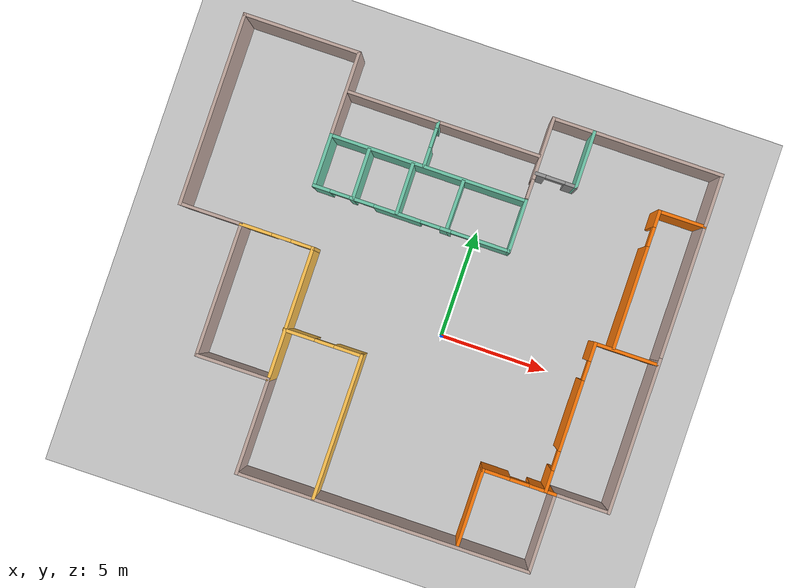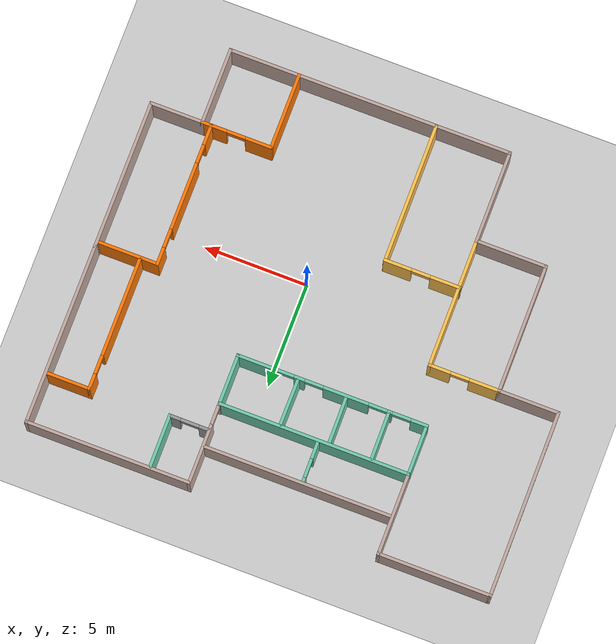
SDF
<sdf version="1.6">
 <world name="default">
  <model name="ground_plane">
   <static>1</static>
   <link name="link">
    <collision name="collision">
     <geometry><plane><normal>0 0 1</normal><size>100 100</size></plane></geometry>
     <surface>
      <contact><collide_bitmask>65535</collide_bitmask></contact>
      <friction><ode><mu>100</mu><mu2>50</mu2></ode></friction>
     </surface>
    </collision>
    <visual name="visual">
     <cast_shadows>0</cast_shadows>
     <geometry><plane><normal>0 0 1</normal><size>100 100</size></plane></geometry>
     <material>
      <script><uri>file://media/materials/scripts/gazebo.material</uri><name>Gazebo/Grey</name></script>
     </material>
    </visual>
   </link>
  </model>
  <model name="Office">
   <pose>-1.6791 1.0811 0 0 -0 0</pose>
   <link name="Wall_0">
    <collision name="Wall_0_Collision">
     <geometry><box><size>9 0.15 2.5</size></box></geometry>
     <pose>0 0 1.25 0 -0 0</pose>
    </collision>
    <visual name="Wall_0_Visual">
     <pose>0 0 1.25 0 -0 0</pose>
     <geometry><box><size>9 0.15 2.5</size></box></geometry>
     <material>
      <script><uri>file://media/materials/scripts/gazebo.material</uri><name>Gazebo/Grey</name></script>
      <ambient>0.760784 0.662745 0.627451 1</ambient>
     </material>
     <meta><layer>0</layer></meta>
    </visual>
    <pose>-11.15 5.225 0 0 -0 1.5708</pose>
   </link>
   <link name="Wall_1">
    <collision name="Wall_1_Collision">
     <geometry><box><size>5.5 0.15 2.5</size></box></geometry>
     <pose>0 0 1.25 0 -0 0</pose>
    </collision>
    <visual name="Wall_1_Visual">
     <pose>0 0 1.25 0 -0 0</pose>
     <geometry><box><size>5.5 0.15 2.5</size></box></geometry>
     <material>
      <script><uri>file://media/materials/scripts/gazebo.material</uri><name>Gazebo/Grey</name></script>
      <ambient>0.760784 0.662745 0.627451 1</ambient>
     </material>
     <meta><layer>0</layer></meta>
    </visual>
    <pose>-8.475 9.65 0 0 -0 0</pose>
   </link>
   <link name="Wall_10">
    <collision name="Wall_10_Collision">
     <geometry><box><size>3 0.15 2.5</size></box></geometry>
     <pose>0 0 1.25 0 -0 0</pose>
    </collision>
    <visual name="Wall_10_Visual">
     <pose>0 0 1.25 0 -0 0</pose>
     <geometry><box><size>3 0.15 2.5</size></box></geometry>
     <material>
      <script><uri>file://media/materials/scripts/gazebo.material</uri><name>Gazebo/Grey</name></script>
      <ambient>0.760784 0.662745 0.627451 1</ambient>
     </material>
     <meta><layer>0</layer></meta>
    </visual>
    <pose>-9.725 0.8 0 0 -0 0</pose>
   </link>
   <link name="Wall_11">
    <collision name="Wall_11_Collision">
     <geometry><box><size>6.25 0.15 2.5</size></box></geometry>
     <pose>0 0 1.25 0 -0 0</pose>
    </collision>
    <visual name="Wall_11_Visual">
     <pose>0 0 1.25 0 -0 0</pose>
     <geometry><box><size>6.25 0.15 2.5</size></box></geometry>
     <material>
      <script><uri>file://media/materials/scripts/gazebo.material</uri><name>Gazebo/Grey</name></script>
      <ambient>0.760784 0.662745 0.627451 1</ambient>
     </material>
     <meta><layer>0</layer></meta>
    </visual>
    <pose>-8.3 -2.25 0 0 -0 -1.5708</pose>
   </link>
   <link name="Wall_12">
    <collision name="Wall_12_Collision">
     <geometry><box><size>3.5 0.15 2.5</size></box></geometry>
     <pose>0 0 1.25 0 -0 0</pose>
    </collision>
    <visual name="Wall_12_Visual">
     <pose>0 0 1.25 0 -0 0</pose>
     <geometry><box><size>3.5 0.15 2.5</size></box></geometry>
     <material>
      <script><uri>file://media/materials/scripts/gazebo.material</uri><name>Gazebo/Grey</name></script>
      <ambient>0.760784 0.662745 0.627451 1</ambient>
     </material>
     <meta><layer>0</layer></meta>
    </visual>
    <pose>-6.625 -5.3 0 0 -0 0</pose>
   </link>
   <link name="Wall_13">
    <collision name="Wall_13_Collision">
     <geometry><box><size>4.5 0.15 2.5</size></box></geometry>
     <pose>0 0 1.25 0 -0 0</pose>
    </collision>
    <visual name="Wall_13_Visual">
     <pose>0 0 1.25 0 -0 0</pose>
     <geometry><box><size>4.5 0.15 2.5</size></box></geometry>
     <material>
      <script><uri>file://media/materials/scripts/gazebo.material</uri><name>Gazebo/Grey</name></script>
      <ambient>0.760784 0.662745 0.627451 1</ambient>
     </material>
     <meta><layer>0</layer></meta>
    </visual>
    <pose>-4.95 -7.475 0 0 -0 -1.5708</pose>
   </link>
   <link name="Wall_14">
    <collision name="Wall_14_Collision">
     <geometry><box><size>13.75 0.15 2.5</size></box></geometry>
     <pose>0 0 1.25 0 -0 0</pose>
    </collision>
    <visual name="Wall_14_Visual">
     <pose>0 0 1.25 0 -0 0</pose>
     <geometry><box><size>13.75 0.15 2.5</size></box></geometry>
     <material>
      <script><uri>file://media/materials/scripts/gazebo.material</uri><name>Gazebo/Grey</name></script>
      <ambient>0.760784 0.662745 0.627451 1</ambient>
     </material>
     <meta><layer>0</layer></meta>
    </visual>
    <pose>1.85 -9.65 0 0 -0 0</pose>
   </link>
   <link name="Wall_15">
    <collision name="Wall_15_Collision">
     <geometry><box><size>3.75 0.15 2.5</size></box></geometry>
     <pose>0 0 1.25 0 -0 0</pose>
    </collision>
    <visual name="Wall_15_Visual">
     <pose>0 0 1.25 0 -0 0</pose>
     <geometry><box><size>3.75 0.15 2.5</size></box></geometry>
     <material>
      <script><uri>file://media/materials/scripts/gazebo.material</uri><name>Gazebo/Grey</name></script>
      <ambient>0.760784 0.662745 0.627451 1</ambient>
     </material>
     <meta><layer>0</layer></meta>
    </visual>
    <pose>8.65 -7.85 0 0 -0 1.5708</pose>
   </link>
   <link name="Wall_19">
    <collision name="Wall_19_Collision">
     <geometry><box><size>7.25 0.15 2.5</size></box></geometry>
     <pose>0 0 1.25 0 -0 0</pose>
    </collision>
    <visual name="Wall_19_Visual">
     <pose>0 0 1.25 0 -0 0</pose>
     <geometry><box><size>7.25 0.15 2.5</size></box></geometry>
     <material>
      <script><uri>file://media/materials/scripts/gazebo.material</uri><name>Gazebo/Grey</name></script>
      <ambient>0.760784 0.662745 0.627451 1</ambient>
     </material>
     <meta><layer>0</layer></meta>
    </visual>
    <pose>11.15 -2.5 0 0 -0 -1.5708</pose>
   </link>
   <link name="Wall_2">
    <collision name="Wall_2_Collision">
     <geometry><box><size>4 0.15 2.5</size></box></geometry>
     <pose>0 0 1.25 0 -0 0</pose>
    </collision>
    <visual name="Wall_2_Visual">
     <pose>0 0 1.25 0 -0 0</pose>
     <geometry><box><size>4 0.15 2.5</size></box></geometry>
     <material>
      <script><uri>file://media/materials/scripts/gazebo.material</uri><name>Gazebo/Grey</name></script>
      <ambient>0.760784 0.662745 0.627451 1</ambient>
     </material>
     <meta><layer>0</layer></meta>
    </visual>
    <pose>-5.8 7.725 0 0 -0 -1.5708</pose>
   </link>
   <link name="Wall_20">
    <collision name="Wall_20_Collision">
     <geometry><box><size>2.65 0.15 2.5</size></box></geometry>
     <pose>0 0 1.25 0 -0 0</pose>
    </collision>
    <visual name="Wall_20_Visual">
     <pose>0 0 1.25 0 -0 0</pose>
     <geometry><box><size>2.65 0.15 2.5</size></box></geometry>
     <material>
      <script><uri>file://media/materials/scripts/gazebo.material</uri><name>Gazebo/Grey</name></script>
      <ambient>0.760784 0.662745 0.627451 1</ambient>
     </material>
     <meta><layer>0</layer></meta>
    </visual>
    <pose>9.9 -6.05 0 0 -0 3.14159</pose>
   </link>
   <link name="Wall_22">
    <pose>-6.625 0.8 0 0 -0 0</pose>
    <visual name="Wall_22_Visual_0">
     <pose>-0.996511 0 1.25 0 -0 0</pose>
     <geometry><box><size>1.50698 0.15 2.5</size></box></geometry>
     <material>
      <script><uri>file://media/materials/scripts/gazebo.material</uri><name>Gazebo/Grey</name></script>
      <ambient>1 0.764706 0.305882 1</ambient>
     </material>
     <meta><layer>0</layer></meta>
    </visual>
    <collision name="Wall_22_Collision_0">
     <geometry><box><size>1.50698 0.15 2.5</size></box></geometry>
     <pose>-0.996511 0 1.25 0 -0 0</pose>
    </collision>
    <visual name="Wall_22_Visual_1">
     <pose>1.20349 0 1.25 0 -0 0</pose>
     <geometry><box><size>1.09302 0.15 2.5</size></box></geometry>
     <material>
      <script><uri>file://media/materials/scripts/gazebo.material</uri><name>Gazebo/Grey</name></script>
      <ambient>1 0.764706 0.305882 1</ambient>
     </material>
     <meta><layer>0</layer></meta>
    </visual>
    <collision name="Wall_22_Collision_1">
     <geometry><box><size>1.09302 0.15 2.5</size></box></geometry>
     <pose>1.20349 0 1.25 0 -0 0</pose>
    </collision>
    <visual name="Wall_22_Visual_2">
     <pose>0.206978 0 2.25 0 -0 0</pose>
     <geometry><box><size>0.9 0.15 0.5</size></box></geometry>
     <material>
      <script><uri>file://media/materials/scripts/gazebo.material</uri><name>Gazebo/Grey</name></script>
      <ambient>1 0.764706 0.305882 1</ambient>
     </material>
     <meta><layer>0</layer></meta>
    </visual>
    <collision name="Wall_22_Collision_2">
     <geometry><box><size>0.9 0.15 0.5</size></box></geometry>
     <pose>0.206978 0 2.25 0 -0 0</pose>
    </collision>
   </link>
   <link name="Wall_24">
    <collision name="Wall_24_Collision">
     <geometry><box><size>6.25 0.15 2.5</size></box></geometry>
     <pose>0 0 1.25 0 -0 0</pose>
    </collision>
    <visual name="Wall_24_Visual">
     <pose>0 0 1.25 0 -0 0</pose>
     <geometry><box><size>6.25 0.15 2.5</size></box></geometry>
     <material>
      <script><uri>file://media/materials/scripts/gazebo.material</uri><name>Gazebo/Grey</name></script>
      <ambient>1 0.764706 0.305882 1</ambient>
     </material>
     <meta><layer>0</layer></meta>
    </visual>
    <pose>-4.95 -2.25 0 0 -0 1.5708</pose>
   </link>
   <link name="Wall_26">
    <pose>-3.18284 -3.00704 0 0 -0 0</pose>
    <visual name="Wall_26_Visual_0">
     <pose>-1.13202 0 1.25 0 -0 0</pose>
     <geometry><box><size>1.48596 0.15 2.5</size></box></geometry>
     <material>
      <script><uri>file://media/materials/scripts/gazebo.material</uri><name>Gazebo/Grey</name></script>
      <ambient>1 0.764706 0.305882 1</ambient>
     </material>
     <meta><layer>0</layer></meta>
    </visual>
    <collision name="Wall_26_Collision_0">
     <geometry><box><size>1.48596 0.15 2.5</size></box></geometry>
     <pose>-1.13202 0 1.25 0 -0 0</pose>
    </collision>
    <visual name="Wall_26_Visual_1">
     <pose>1.19298 0 1.25 0 -0 0</pose>
     <geometry><box><size>1.36404 0.15 2.5</size></box></geometry>
     <material>
      <script><uri>file://media/materials/scripts/gazebo.material</uri><name>Gazebo/Grey</name></script>
      <ambient>1 0.764706 0.305882 1</ambient>
     </material>
     <meta><layer>0</layer></meta>
    </visual>
    <collision name="Wall_26_Collision_1">
     <geometry><box><size>1.36404 0.15 2.5</size></box></geometry>
     <pose>1.19298 0 1.25 0 -0 0</pose>
    </collision>
    <visual name="Wall_26_Visual_2">
     <pose>0.060957 0 2.25 0 -0 0</pose>
     <geometry><box><size>0.9 0.15 0.5</size></box></geometry>
     <material>
      <script><uri>file://media/materials/scripts/gazebo.material</uri><name>Gazebo/Grey</name></script>
      <ambient>1 0.764706 0.305882 1</ambient>
     </material>
     <meta><layer>0</layer></meta>
    </visual>
    <collision name="Wall_26_Collision_2">
     <geometry><box><size>0.9 0.15 0.5</size></box></geometry>
     <pose>0.060957 0 2.25 0 -0 0</pose>
    </collision>
   </link>
   <link name="Wall_27">
    <collision name="Wall_27_Collision">
     <geometry><box><size>6.75 0.15 2.5</size></box></geometry>
     <pose>0 0 1.25 0 -0 0</pose>
    </collision>
    <visual name="Wall_27_Visual">
     <pose>0 0 1.25 0 -0 0</pose>
     <geometry><box><size>6.75 0.15 2.5</size></box></geometry>
     <material>
      <script><uri>file://media/materials/scripts/gazebo.material</uri><name>Gazebo/Grey</name></script>
      <ambient>1 0.764706 0.305882 1</ambient>
     </material>
     <meta><layer>0</layer></meta>
    </visual>
    <pose>-1.38284 -6.30704 0 0 -0 -1.5708</pose>
   </link>
   <link name="Wall_3">
    <collision name="Wall_3_Collision">
     <geometry><box><size>9.25 0.15 2.5</size></box></geometry>
     <pose>0 0 1.25 0 -0 0</pose>
    </collision>
    <visual name="Wall_3_Visual">
     <pose>0 0 1.25 0 -0 0</pose>
     <geometry><box><size>9.25 0.15 2.5</size></box></geometry>
     <material>
      <script><uri>file://media/materials/scripts/gazebo.material</uri><name>Gazebo/Grey</name></script>
      <ambient>0.435294 0.796078 0.67451 1</ambient>
     </material>
     <meta><layer>0</layer></meta>
    </visual>
    <pose>-1.25 5.8 0 0 -0 0</pose>
   </link>
   <link name="Wall_31">
    <pose>6.975 -6.05 0 0 -0 3.14159</pose>
    <visual name="Wall_31_Visual_0">
     <pose>-1.11281 0 1.25 0 -0 0</pose>
     <geometry><box><size>1.27439 0.15 2.5</size></box></geometry>
     <material>
      <script><uri>file://media/materials/scripts/gazebo.material</uri><name>Gazebo/Grey</name></script>
      <ambient>0.996078 0.47451 0.0196078 1</ambient>
     </material>
     <meta><layer>0</layer></meta>
    </visual>
    <collision name="Wall_31_Collision_0">
     <geometry><box><size>1.27439 0.15 2.5</size></box></geometry>
     <pose>-1.11281 0 1.25 0 -0 0</pose>
    </collision>
    <visual name="Wall_31_Visual_1">
     <pose>1.08719 0 1.25 0 -0 0</pose>
     <geometry><box><size>1.32561 0.15 2.5</size></box></geometry>
     <material>
      <script><uri>file://media/materials/scripts/gazebo.material</uri><name>Gazebo/Grey</name></script>
      <ambient>0.996078 0.47451 0.0196078 1</ambient>
     </material>
     <meta><layer>0</layer></meta>
    </visual>
    <collision name="Wall_31_Collision_1">
     <geometry><box><size>1.32561 0.15 2.5</size></box></geometry>
     <pose>1.08719 0 1.25 0 -0 0</pose>
    </collision>
    <visual name="Wall_31_Visual_2">
     <pose>-0.025609 0 2.25 0 -0 0</pose>
     <geometry><box><size>0.9 0.15 0.5</size></box></geometry>
     <material>
      <script><uri>file://media/materials/scripts/gazebo.material</uri><name>Gazebo/Grey</name></script>
      <ambient>0.996078 0.47451 0.0196078 1</ambient>
     </material>
     <meta><layer>0</layer></meta>
    </visual>
    <collision name="Wall_31_Collision_2">
     <geometry><box><size>0.9 0.15 0.5</size></box></geometry>
     <pose>-0.025609 0 2.25 0 -0 0</pose>
    </collision>
   </link>
   <link name="Wall_34">
    <collision name="Wall_34_Collision">
     <geometry><box><size>3.75 0.15 2.5</size></box></geometry>
     <pose>0 0 1.25 0 -0 0</pose>
    </collision>
    <visual name="Wall_34_Visual">
     <pose>0 0 1.25 0 -0 0</pose>
     <geometry><box><size>3.75 0.15 2.5</size></box></geometry>
     <material>
      <script><uri>file://media/materials/scripts/gazebo.material</uri><name>Gazebo/Grey</name></script>
      <ambient>0.996078 0.47451 0.0196078 1</ambient>
     </material>
     <meta><layer>0</layer></meta>
    </visual>
    <pose>5.3 -7.85 0 0 -0 -1.5708</pose>
   </link>
   <link name="Wall_36">
    <pose>8.21512 -2.61498 0 0 -0 1.5708</pose>
    <visual name="Wall_36_Visual_0">
     <pose>-2.98655 0 1.25 0 -0 0</pose>
     <geometry><box><size>1.02689 0.15 2.5</size></box></geometry>
     <material>
      <script><uri>file://media/materials/scripts/gazebo.material</uri><name>Gazebo/Grey</name></script>
      <ambient>0.996078 0.47451 0.0196078 1</ambient>
     </material>
     <meta><layer>0</layer></meta>
    </visual>
    <collision name="Wall_36_Collision_0">
     <geometry><box><size>1.02689 0.15 2.5</size></box></geometry>
     <pose>-2.98655 0 1.25 0 -0 0</pose>
    </collision>
    <visual name="Wall_36_Visual_1">
     <pose>0.068841 0 1.25 0 -0 0</pose>
     <geometry><box><size>3.28389 0.15 2.5</size></box></geometry>
     <material>
      <script><uri>file://media/materials/scripts/gazebo.material</uri><name>Gazebo/Grey</name></script>
      <ambient>0.996078 0.47451 0.0196078 1</ambient>
     </material>
     <meta><layer>0</layer></meta>
    </visual>
    <collision name="Wall_36_Collision_1">
     <geometry><box><size>3.28389 0.15 2.5</size></box></geometry>
     <pose>0.068841 0 1.25 0 -0 0</pose>
    </collision>
    <visual name="Wall_36_Visual_2">
     <pose>3.05539 0 1.25 0 -0 0</pose>
     <geometry><box><size>0.889212 0.15 2.5</size></box></geometry>
     <material>
      <script><uri>file://media/materials/scripts/gazebo.material</uri><name>Gazebo/Grey</name></script>
      <ambient>0.996078 0.47451 0.0196078 1</ambient>
     </material>
     <meta><layer>0</layer></meta>
    </visual>
    <collision name="Wall_36_Collision_2">
     <geometry><box><size>0.889212 0.15 2.5</size></box></geometry>
     <pose>3.05539 0 1.25 0 -0 0</pose>
    </collision>
    <visual name="Wall_36_Visual_3">
     <pose>-2.02311 0 2.25 0 -0 0</pose>
     <geometry><box><size>0.9 0.15 0.5</size></box></geometry>
     <material>
      <script><uri>file://media/materials/scripts/gazebo.material</uri><name>Gazebo/Grey</name></script>
      <ambient>0.996078 0.47451 0.0196078 1</ambient>
     </material>
     <meta><layer>0</layer></meta>
    </visual>
    <collision name="Wall_36_Collision_3">
     <geometry><box><size>0.9 0.15 0.5</size></box></geometry>
     <pose>-2.02311 0 2.25 0 -0 0</pose>
    </collision>
    <visual name="Wall_36_Visual_4">
     <pose>2.16079 0 2.25 0 -0 0</pose>
     <geometry><box><size>0.9 0.15 0.5</size></box></geometry>
     <material>
      <script><uri>file://media/materials/scripts/gazebo.material</uri><name>Gazebo/Grey</name></script>
      <ambient>0.996078 0.47451 0.0196078 1</ambient>
     </material>
     <meta><layer>0</layer></meta>
    </visual>
    <collision name="Wall_36_Collision_4">
     <geometry><box><size>0.9 0.15 0.5</size></box></geometry>
     <pose>2.16079 0 2.25 0 -0 0</pose>
    </collision>
   </link>
   <link name="Wall_39">
    <collision name="Wall_39_Collision">
     <geometry><box><size>3 0.15 2.5</size></box></geometry>
     <pose>0 0 1.25 0 -0 0</pose>
    </collision>
    <visual name="Wall_39_Visual">
     <pose>0 0 1.25 0 -0 0</pose>
     <geometry><box><size>3 0.15 2.5</size></box></geometry>
     <material>
      <script><uri>file://media/materials/scripts/gazebo.material</uri><name>Gazebo/Grey</name></script>
      <ambient>0.996078 0.47451 0.0196078 1</ambient>
     </material>
     <meta><layer>0</layer></meta>
    </visual>
    <pose>9.64012 0.810019 0 0 -0 0</pose>
   </link>
   <link name="Wall_4">
    <pose>3.3 7.725 0 0 -0 1.5708</pose>
    <visual name="Wall_4_Visual_0">
     <pose>-1.90552 0 1.25 0 -0 0</pose>
     <geometry><box><size>0.188955 0.15 2.5</size></box></geometry>
     <material>
      <script><uri>file://media/materials/scripts/gazebo.material</uri><name>Gazebo/Grey</name></script>
      <ambient>0.760784 0.662745 0.627451 1</ambient>
     </material>
     <meta><layer>0</layer></meta>
    </visual>
    <collision name="Wall_4_Collision_0">
     <geometry><box><size>0.188955 0.15 2.5</size></box></geometry>
     <pose>-1.90552 0 1.25 0 -0 0</pose>
    </collision>
    <visual name="Wall_4_Visual_1">
     <pose>0.544478 0 1.25 0 -0 0</pose>
     <geometry><box><size>2.91105 0.15 2.5</size></box></geometry>
     <material>
      <script><uri>file://media/materials/scripts/gazebo.material</uri><name>Gazebo/Grey</name></script>
      <ambient>0.760784 0.662745 0.627451 1</ambient>
     </material>
     <meta><layer>0</layer></meta>
    </visual>
    <collision name="Wall_4_Collision_1">
     <geometry><box><size>2.91105 0.15 2.5</size></box></geometry>
     <pose>0.544478 0 1.25 0 -0 0</pose>
    </collision>
    <visual name="Wall_4_Visual_2">
     <pose>-1.36105 0 2.25 0 -0 0</pose>
     <geometry><box><size>0.9 0.15 0.5</size></box></geometry>
     <material>
      <script><uri>file://media/materials/scripts/gazebo.material</uri><name>Gazebo/Grey</name></script>
      <ambient>0.760784 0.662745 0.627451 1</ambient>
     </material>
     <meta><layer>0</layer></meta>
    </visual>
    <collision name="Wall_4_Collision_2">
     <geometry><box><size>0.9 0.15 0.5</size></box></geometry>
     <pose>-1.36105 0 2.25 0 -0 0</pose>
    </collision>
   </link>
   <link name="Wall_41">
    <collision name="Wall_41_Collision">
     <geometry><box><size>9 0.15 2.5</size></box></geometry>
     <pose>0 0 1.25 0 -0 0</pose>
    </collision>
    <visual name="Wall_41_Visual">
     <pose>0 0 1.25 0 -0 0</pose>
     <geometry><box><size>9 0.15 2.5</size></box></geometry>
     <material>
      <script><uri>file://media/materials/scripts/gazebo.material</uri><name>Gazebo/Grey</name></script>
      <ambient>0.760784 0.662745 0.627451 1</ambient>
     </material>
     <meta><layer>0</layer></meta>
    </visual>
    <pose>-1.23454 7.87067 0 0 -0 0</pose>
   </link>
   <link name="Wall_43">
    <pose>-1.47642 6.84275 0 0 -0 -1.5652</pose>
    <visual name="Wall_43_Visual_0">
     <pose>-0.912677 0 1.25 0 -0 0</pose>
     <geometry><box><size>0.333512 0.15 2.5</size></box></geometry>
     <material>
      <script><uri>file://media/materials/scripts/gazebo.material</uri><name>Gazebo/Grey</name></script>
      <ambient>0.435294 0.796078 0.67451 1</ambient>
     </material>
     <meta><layer>0</layer></meta>
    </visual>
    <collision name="Wall_43_Collision_0">
     <geometry><box><size>0.333512 0.15 2.5</size></box></geometry>
     <pose>-0.912677 0 1.25 0 -0 0</pose>
    </collision>
    <visual name="Wall_43_Visual_1">
     <pose>0.616756 0 1.25 0 -0 0</pose>
     <geometry><box><size>0.925354 0.15 2.5</size></box></geometry>
     <material>
      <script><uri>file://media/materials/scripts/gazebo.material</uri><name>Gazebo/Grey</name></script>
      <ambient>0.435294 0.796078 0.67451 1</ambient>
     </material>
     <meta><layer>0</layer></meta>
    </visual>
    <collision name="Wall_43_Collision_1">
     <geometry><box><size>0.925354 0.15 2.5</size></box></geometry>
     <pose>0.616756 0 1.25 0 -0 0</pose>
    </collision>
    <visual name="Wall_43_Visual_2">
     <pose>-0.295921 0 2.25 0 -0 0</pose>
     <geometry><box><size>0.9 0.15 0.5</size></box></geometry>
     <material>
      <script><uri>file://media/materials/scripts/gazebo.material</uri><name>Gazebo/Grey</name></script>
      <ambient>0.435294 0.796078 0.67451 1</ambient>
     </material>
     <meta><layer>0</layer></meta>
    </visual>
    <collision name="Wall_43_Collision_2">
     <geometry><box><size>0.9 0.15 0.5</size></box></geometry>
     <pose>-0.295921 0 2.25 0 -0 0</pose>
    </collision>
   </link>
   <link name="Wall_49">
    <collision name="Wall_49_Collision">
     <geometry><box><size>2.5 0.15 2.5</size></box></geometry>
     <pose>0 0 1.25 0 -0 0</pose>
    </collision>
    <visual name="Wall_49_Visual">
     <pose>0 0 1.25 0 -0 0</pose>
     <geometry><box><size>2.5 0.15 2.5</size></box></geometry>
     <material>
      <script><uri>file://media/materials/scripts/gazebo.material</uri><name>Gazebo/Grey</name></script>
      <ambient>0.435294 0.796078 0.67451 1</ambient>
     </material>
     <meta><layer>0</layer></meta>
    </visual>
    <pose>-5.8 4.625 0 0 -0 -1.5708</pose>
   </link>
   <link name="Wall_5">
    <collision name="Wall_5_Collision">
     <geometry><box><size>8 0.15 2.5</size></box></geometry>
     <pose>0 0 1.25 0 -0 0</pose>
    </collision>
    <visual name="Wall_5_Visual">
     <pose>0 0 1.25 0 -0 0</pose>
     <geometry><box><size>8 0.15 2.5</size></box></geometry>
     <material>
      <script><uri>file://media/materials/scripts/gazebo.material</uri><name>Gazebo/Grey</name></script>
      <ambient>0.760784 0.662745 0.627451 1</ambient>
     </material>
     <meta><layer>0</layer></meta>
    </visual>
    <pose>7.225 9.65 0 0 -0 0</pose>
   </link>
   <link name="Wall_50">
    <pose>-1.25 3.45 0 0 -0 0</pose>
    <visual name="Wall_50_Visual_0">
     <pose>-4.20897 0 1.25 0 -0 0</pose>
     <geometry><box><size>0.832069 0.15 2.5</size></box></geometry>
     <material>
      <script><uri>file://media/materials/scripts/gazebo.material</uri><name>Gazebo/Grey</name></script>
      <ambient>0.435294 0.796078 0.67451 1</ambient>
     </material>
     <meta><layer>0</layer></meta>
    </visual>
    <collision name="Wall_50_Collision_0">
     <geometry><box><size>0.832069 0.15 2.5</size></box></geometry>
     <pose>-4.20897 0 1.25 0 -0 0</pose>
    </collision>
    <visual name="Wall_50_Visual_1">
     <pose>-2.77701 0 1.25 0 -0 0</pose>
     <geometry><box><size>0.231838 0.15 2.5</size></box></geometry>
     <material>
      <script><uri>file://media/materials/scripts/gazebo.material</uri><name>Gazebo/Grey</name></script>
      <ambient>0.435294 0.796078 0.67451 1</ambient>
     </material>
     <meta><layer>0</layer></meta>
    </visual>
    <collision name="Wall_50_Collision_1">
     <geometry><box><size>0.231838 0.15 2.5</size></box></geometry>
     <pose>-2.77701 0 1.25 0 -0 0</pose>
    </collision>
    <visual name="Wall_50_Visual_2">
     <pose>-0.666286 0 1.25 0 -0 0</pose>
     <geometry><box><size>2.18961 0.15 2.5</size></box></geometry>
     <material>
      <script><uri>file://media/materials/scripts/gazebo.material</uri><name>Gazebo/Grey</name></script>
      <ambient>0.435294 0.796078 0.67451 1</ambient>
     </material>
     <meta><layer>0</layer></meta>
    </visual>
    <collision name="Wall_50_Collision_2">
     <geometry><box><size>2.18961 0.15 2.5</size></box></geometry>
     <pose>-0.666286 0 1.25 0 -0 0</pose>
    </collision>
    <visual name="Wall_50_Visual_3">
     <pose>1.5821 0 1.25 0 -0 0</pose>
     <geometry><box><size>0.507151 0.15 2.5</size></box></geometry>
     <material>
      <script><uri>file://media/materials/scripts/gazebo.material</uri><name>Gazebo/Grey</name></script>
      <ambient>0.435294 0.796078 0.67451 1</ambient>
     </material>
     <meta><layer>0</layer></meta>
    </visual>
    <collision name="Wall_50_Collision_3">
     <geometry><box><size>0.507151 0.15 2.5</size></box></geometry>
     <pose>1.5821 0 1.25 0 -0 0</pose>
    </collision>
    <visual name="Wall_50_Visual_4">
     <pose>3.68034 0 1.25 0 -0 0</pose>
     <geometry><box><size>1.88933 0.15 2.5</size></box></geometry>
     <material>
      <script><uri>file://media/materials/scripts/gazebo.material</uri><name>Gazebo/Grey</name></script>
      <ambient>0.435294 0.796078 0.67451 1</ambient>
     </material>
     <meta><layer>0</layer></meta>
    </visual>
    <collision name="Wall_50_Collision_4">
     <geometry><box><size>1.88933 0.15 2.5</size></box></geometry>
     <pose>3.68034 0 1.25 0 -0 0</pose>
    </collision>
    <visual name="Wall_50_Visual_5">
     <pose>-3.34293 0 2.25 0 -0 0</pose>
     <geometry><box><size>0.9 0.15 0.5</size></box></geometry>
     <material>
      <script><uri>file://media/materials/scripts/gazebo.material</uri><name>Gazebo/Grey</name></script>
      <ambient>0.435294 0.796078 0.67451 1</ambient>
     </material>
     <meta><layer>0</layer></meta>
    </visual>
    <collision name="Wall_50_Collision_5">
     <geometry><box><size>0.9 0.15 0.5</size></box></geometry>
     <pose>-3.34293 0 2.25 0 -0 0</pose>
    </collision>
    <visual name="Wall_50_Visual_6">
     <pose>-2.21109 0 2.25 0 -0 0</pose>
     <geometry><box><size>0.9 0.15 0.5</size></box></geometry>
     <material>
      <script><uri>file://media/materials/scripts/gazebo.material</uri><name>Gazebo/Grey</name></script>
      <ambient>0.435294 0.796078 0.67451 1</ambient>
     </material>
     <meta><layer>0</layer></meta>
    </visual>
    <collision name="Wall_50_Collision_6">
     <geometry><box><size>0.9 0.15 0.5</size></box></geometry>
     <pose>-2.21109 0 2.25 0 -0 0</pose>
    </collision>
    <visual name="Wall_50_Visual_7">
     <pose>0.878521 0 2.25 0 -0 0</pose>
     <geometry><box><size>0.9 0.15 0.5</size></box></geometry>
     <material>
      <script><uri>file://media/materials/scripts/gazebo.material</uri><name>Gazebo/Grey</name></script>
      <ambient>0.435294 0.796078 0.67451 1</ambient>
     </material>
     <meta><layer>0</layer></meta>
    </visual>
    <collision name="Wall_50_Collision_7">
     <geometry><box><size>0.9 0.15 0.5</size></box></geometry>
     <pose>0.878521 0 2.25 0 -0 0</pose>
    </collision>
    <visual name="Wall_50_Visual_8">
     <pose>2.28567 0 2.25 0 -0 0</pose>
     <geometry><box><size>0.9 0.15 0.5</size></box></geometry>
     <material>
      <script><uri>file://media/materials/scripts/gazebo.material</uri><name>Gazebo/Grey</name></script>
      <ambient>0.435294 0.796078 0.67451 1</ambient>
     </material>
     <meta><layer>0</layer></meta>
    </visual>
    <collision name="Wall_50_Collision_8">
     <geometry><box><size>0.9 0.15 0.5</size></box></geometry>
     <pose>2.28567 0 2.25 0 -0 0</pose>
    </collision>
   </link>
   <link name="Wall_51">
    <collision name="Wall_51_Collision">
     <geometry><box><size>2.5 0.15 2.5</size></box></geometry>
     <pose>0 0 1.25 0 -0 0</pose>
    </collision>
    <visual name="Wall_51_Visual">
     <pose>0 0 1.25 0 -0 0</pose>
     <geometry><box><size>2.5 0.15 2.5</size></box></geometry>
     <material>
      <script><uri>file://media/materials/scripts/gazebo.material</uri><name>Gazebo/Grey</name></script>
      <ambient>0.435294 0.796078 0.67451 1</ambient>
     </material>
     <meta><layer>0</layer></meta>
    </visual>
    <pose>3.3 4.625 0 0 -0 1.5708</pose>
   </link>
   <link name="Wall_53">
    <collision name="Wall_53_Collision">
     <geometry><box><size>2.36765 0.15 2.5</size></box></geometry>
     <pose>0 0 1.25 0 -0 0</pose>
    </collision>
    <visual name="Wall_53_Visual">
     <pose>0 0 1.25 0 -0 0</pose>
     <geometry><box><size>2.36765 0.15 2.5</size></box></geometry>
     <material>
      <script><uri>file://media/materials/scripts/gazebo.material</uri><name>Gazebo/Grey</name></script>
      <ambient>0.435294 0.796078 0.67451 1</ambient>
     </material>
     <meta><layer>0</layer></meta>
    </visual>
    <pose>-3.9959 4.61011 0 0 -0 -1.56454</pose>
   </link>
   <link name="Wall_55">
    <collision name="Wall_55_Collision">
     <geometry><box><size>2.38765 0.15 2.5</size></box></geometry>
     <pose>0 0 1.25 0 -0 0</pose>
    </collision>
    <visual name="Wall_55_Visual">
     <pose>0 0 1.25 0 -0 0</pose>
     <geometry><box><size>2.38765 0.15 2.5</size></box></geometry>
     <material>
      <script><uri>file://media/materials/scripts/gazebo.material</uri><name>Gazebo/Grey</name></script>
      <ambient>0.435294 0.796078 0.67451 1</ambient>
     </material>
     <meta><layer>0</layer></meta>
    </visual>
    <pose>-1.95572 4.60011 0 0 -0 -1.56476</pose>
   </link>
   <link name="Wall_57">
    <collision name="Wall_57_Collision">
     <geometry><box><size>2.41853 0.15 2.5</size></box></geometry>
     <pose>0 0 1.25 0 -0 0</pose>
    </collision>
    <visual name="Wall_57_Visual">
     <pose>0 0 1.25 0 -0 0</pose>
     <geometry><box><size>2.41853 0.15 2.5</size></box></geometry>
     <material>
      <script><uri>file://media/materials/scripts/gazebo.material</uri><name>Gazebo/Grey</name></script>
      <ambient>0.435294 0.796078 0.67451 1</ambient>
     </material>
     <meta><layer>0</layer></meta>
    </visual>
    <pose>0.382342 4.58472 0 0 -0 -1.58152</pose>
   </link>
   <link name="Wall_59">
    <pose>9.04017 4.07442 0 0 -0 1.5708</pose>
    <visual name="Wall_59_Visual_0">
     <pose>-0.853329 0 1.25 0 -0 0</pose>
     <geometry><box><size>4.79334 0.15 2.5</size></box></geometry>
     <material>
      <script><uri>file://media/materials/scripts/gazebo.material</uri><name>Gazebo/Grey</name></script>
      <ambient>0.996078 0.47451 0.0196078 1</ambient>
     </material>
     <meta><layer>0</layer></meta>
    </visual>
    <collision name="Wall_59_Collision_0">
     <geometry><box><size>4.79334 0.15 2.5</size></box></geometry>
     <pose>-0.853329 0 1.25 0 -0 0</pose>
    </collision>
    <visual name="Wall_59_Visual_1">
     <pose>2.84667 0 1.25 0 -0 0</pose>
     <geometry><box><size>0.806659 0.15 2.5</size></box></geometry>
     <material>
      <script><uri>file://media/materials/scripts/gazebo.material</uri><name>Gazebo/Grey</name></script>
      <ambient>0.996078 0.47451 0.0196078 1</ambient>
     </material>
     <meta><layer>0</layer></meta>
    </visual>
    <collision name="Wall_59_Collision_1">
     <geometry><box><size>0.806659 0.15 2.5</size></box></geometry>
     <pose>2.84667 0 1.25 0 -0 0</pose>
    </collision>
    <visual name="Wall_59_Visual_2">
     <pose>1.99334 0 2.25 0 -0 0</pose>
     <geometry><box><size>0.9 0.15 0.5</size></box></geometry>
     <material>
      <script><uri>file://media/materials/scripts/gazebo.material</uri><name>Gazebo/Grey</name></script>
      <ambient>0.996078 0.47451 0.0196078 1</ambient>
     </material>
     <meta><layer>0</layer></meta>
    </visual>
    <collision name="Wall_59_Collision_2">
     <geometry><box><size>0.9 0.15 0.5</size></box></geometry>
     <pose>1.99334 0 2.25 0 -0 0</pose>
    </collision>
   </link>
   <link name="Wall_6">
    <collision name="Wall_6_Collision">
     <geometry><box><size>8.75 0.15 2.5</size></box></geometry>
     <pose>0 0 1.25 0 -0 0</pose>
    </collision>
    <visual name="Wall_6_Visual">
     <pose>0 0 1.25 0 -0 0</pose>
     <geometry><box><size>8.75 0.15 2.5</size></box></geometry>
     <material>
      <script><uri>file://media/materials/scripts/gazebo.material</uri><name>Gazebo/Grey</name></script>
      <ambient>0.760784 0.662745 0.627451 1</ambient>
     </material>
     <meta><layer>0</layer></meta>
    </visual>
    <pose>11.15 5.35 0 0 -0 -1.5708</pose>
   </link>
   <link name="Wall_60">
    <collision name="Wall_60_Collision">
     <geometry><box><size>2.25 0.15 2.5</size></box></geometry>
     <pose>0 0 1.25 0 -0 0</pose>
    </collision>
    <visual name="Wall_60_Visual">
     <pose>0 0 1.25 0 -0 0</pose>
     <geometry><box><size>2.25 0.15 2.5</size></box></geometry>
     <material>
      <script><uri>file://media/materials/scripts/gazebo.material</uri><name>Gazebo/Grey</name></script>
      <ambient>0.996078 0.47451 0.0196078 1</ambient>
     </material>
     <meta><layer>0</layer></meta>
    </visual>
    <pose>10.0902 7.24942 0 0 -0 0</pose>
   </link>
   <link name="Wall_62">
    <pose>4.27612 7.10309 0 0 -0 0</pose>
    <visual name="Wall_62_Visual_0">
     <pose>-0.747887 0 1.25 0 -0 0</pose>
     <geometry><box><size>0.504226 0.15 2.5</size></box></geometry>
     <material>
      <script><uri>file://media/materials/scripts/gazebo.material</uri><name>Gazebo/Grey</name></script>
      <ambient>1 1 1 1</ambient>
     </material>
     <meta><layer>0</layer></meta>
    </visual>
    <collision name="Wall_62_Collision_0">
     <geometry><box><size>0.504226 0.15 2.5</size></box></geometry>
     <pose>-0.747887 0 1.25 0 -0 0</pose>
    </collision>
    <visual name="Wall_62_Visual_1">
     <pose>0.702113 0 1.25 0 -0 0</pose>
     <geometry><box><size>0.595774 0.15 2.5</size></box></geometry>
     <material>
      <script><uri>file://media/materials/scripts/gazebo.material</uri><name>Gazebo/Grey</name></script>
      <ambient>1 1 1 1</ambient>
     </material>
     <meta><layer>0</layer></meta>
    </visual>
    <collision name="Wall_62_Collision_1">
     <geometry><box><size>0.595774 0.15 2.5</size></box></geometry>
     <pose>0.702113 0 1.25 0 -0 0</pose>
    </collision>
    <visual name="Wall_62_Visual_2">
     <pose>-0.045774 0 2.25 0 -0 0</pose>
     <geometry><box><size>0.9 0.15 0.5</size></box></geometry>
     <material>
      <script><uri>file://media/materials/scripts/gazebo.material</uri><name>Gazebo/Grey</name></script>
      <ambient>1 1 1 1</ambient>
     </material>
     <meta><layer>0</layer></meta>
    </visual>
    <collision name="Wall_62_Collision_2">
     <geometry><box><size>0.9 0.15 0.5</size></box></geometry>
     <pose>-0.045774 0 2.25 0 -0 0</pose>
    </collision>
   </link>
   <link name="Wall_63">
    <collision name="Wall_63_Collision">
     <geometry><box><size>2.68962 0.15 2.5</size></box></geometry>
     <pose>0 0 1.25 0 -0 0</pose>
    </collision>
    <visual name="Wall_63_Visual">
     <pose>0 0 1.25 0 -0 0</pose>
     <geometry><box><size>2.68962 0.15 2.5</size></box></geometry>
     <material>
      <script><uri>file://media/materials/scripts/gazebo.material</uri><name>Gazebo/Grey</name></script>
      <ambient>0.435294 0.796078 0.67451 1</ambient>
     </material>
     <meta><layer>0</layer></meta>
    </visual>
    <pose>5.19834 8.3729 0 0 -0 1.57298</pose>
   </link>
   <static>1</static>
  </model>
 </world>
</sdf>
